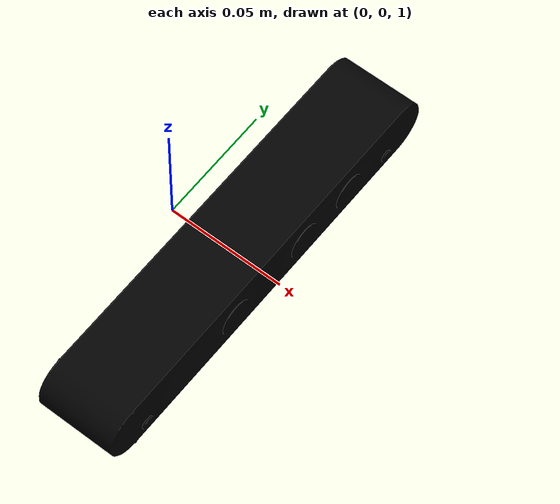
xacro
<?xml version="1.0" ?>
<robot name="scitosA5chest"
       xmlns:controller="http://playerstage.sourceforge.net/gazebo/xmlschema/#controller"
       xmlns:interface="http://playerstage.sourceforge.net/gazebo/xmlschema/#interface"
       xmlns:joint="http://playerstage.sourceforge.net/gazebo/xmlschema/#slider"
       xmlns:sensor="http://playerstage.sourceforge.net/gazebo/xmlschema/#sensor"
       xmlns:xacro="http://ros.org/wiki/xacro">

  <!-- calibration data -->
  <link name="base_link" />

  <!-- Connect base to chest_xtion_link -->
  <link name="chest_xtion_link">
    <visual>
      <origin rpy="3.14 0 0" xyz="0 0 0"/>
      <geometry>
        <mesh filename="package://scitos_description/meshes/xtion.dae"/>
      </geometry>
    </visual>
    <collision>
      <origin rpy="0 0 0" xyz="0 0 0.071"/>
      <geometry>
        <box size="0.001 0.001 0.001"/>
      </geometry>
    </collision>
  </link>

  <link name="chest_xtion_height_tilt_link"/>

  <joint name="chest_xtion_height_joint" type="prismatic" >
    <!-- Z height from calibrate_chest -->
    <axis xyz="0 0 1"/>
    <origin rpy="0 0 0" xyz="0.0294 0 0" />
    <limit effort="1000" velocity="1000" lower="0.5" upper="1.5"/>
    <parent link="base_link"/>
    <child link="chest_xtion_height_tilt_link"/>
  </joint>

  <joint name="chest_xtion_tilt_joint" type="continuous" >
    <!-- Rotation y angle from calibrate_chest-->
    <axis xyz="0 1 0"/>
    <origin rpy="0 0 0" xyz="0 0 0" />
    <parent link="chest_xtion_height_tilt_link"/>
    <child link="chest_xtion_link"/>
  </joint>

  <!-- chest_xtion internal frames -->
  <link name="chest_xtion_depth_frame"/>
  <link name="chest_xtion_rgb_frame"/>
  <link name="chest_xtion_depth_optical_frame"/>
  <link name="chest_xtion_rgb_optical_frame"/>

  <joint name="chest_xtion_base_link" type="fixed" >
    <origin rpy="0 0 0"
            xyz="0 0.045 0" />
    <parent link="chest_xtion_link"/>
    <child link="chest_xtion_depth_frame"/>
  </joint>

  <joint name="chest_xtion_base_link1" type="fixed" >
    <origin rpy="0 0 0"
            xyz="0 0.02 0" />
    <parent link="chest_xtion_link"/>
    <child link="chest_xtion_rgb_frame"/>
  </joint>

  <joint name="chest_xtion_base_link2" type="fixed" >
    <origin rpy="-1.5707963267948966 0 -1.5707963267948966"
            xyz="0 0 0" />
    <parent link="chest_xtion_depth_frame"/>
    <child link="chest_xtion_depth_optical_frame"/>
  </joint>

  <joint name="chest_xtion_base_link3" type="fixed" >
    <origin rpy="-1.5707963267948966 0 -1.5707963267948966"
            xyz="0 0 0" />
    <parent link="chest_xtion_rgb_frame"/>
    <child link="chest_xtion_rgb_optical_frame"/>
  </joint>

</robot>
